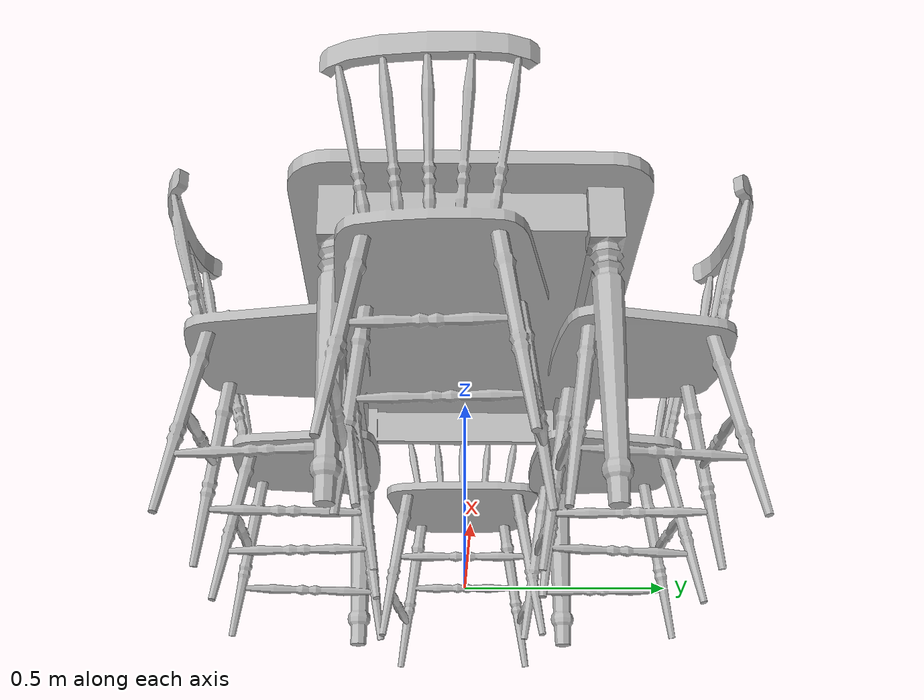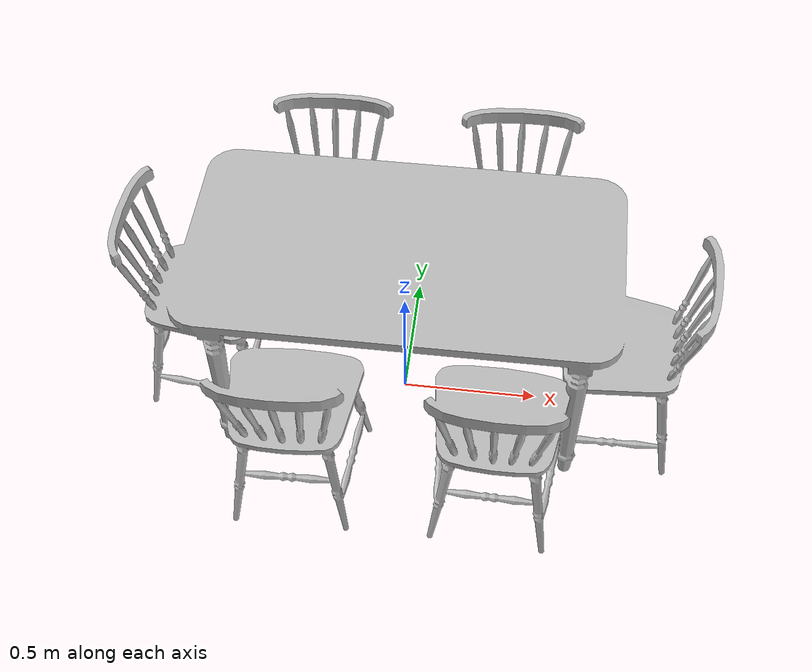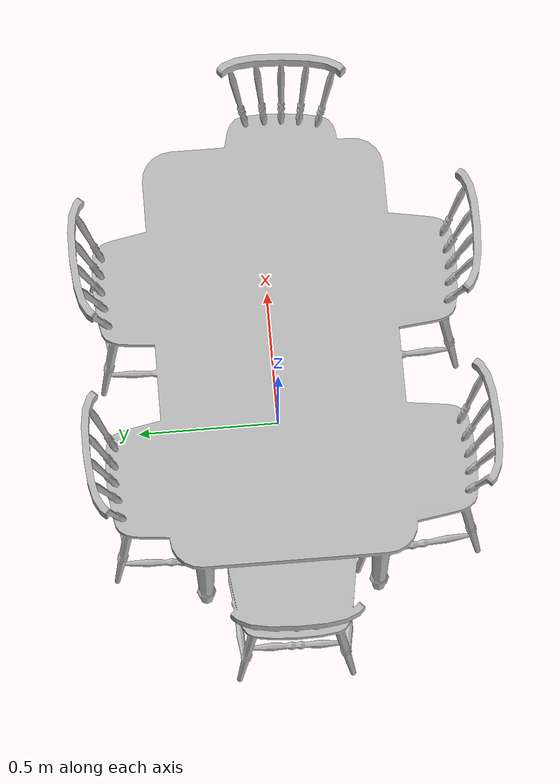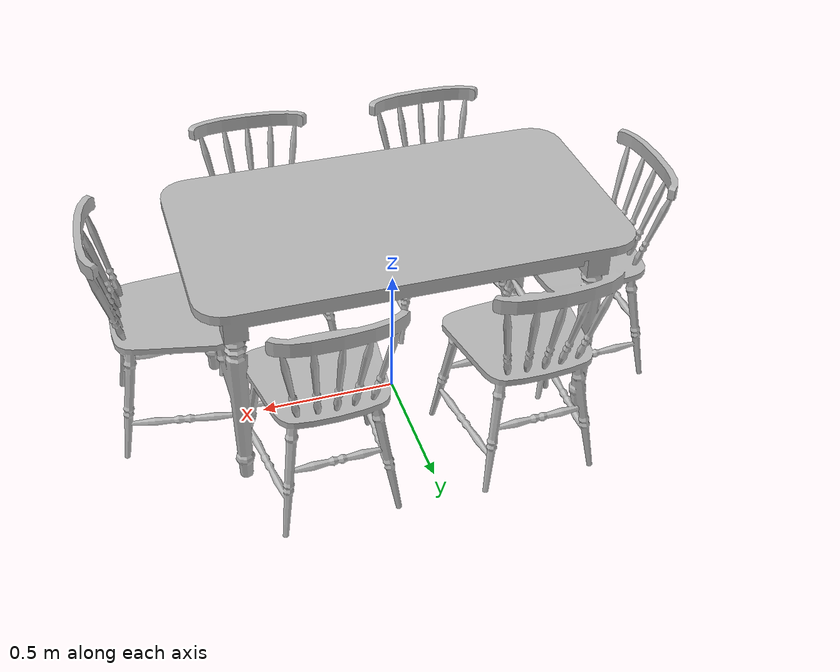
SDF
<?xml version="1.0" ?>
<sdf version="1.7">
  <model name="table_and_chairs">
    <static>true</static>

    <link name="link">
      <visual name="visual">
        <geometry>
          <mesh>
            <uri>model://table_and_chairs/table_and_chairs.dae</uri>

          </mesh>
        </geometry>
      </visual>

      <collision name="collision">
        <geometry>
          <mesh>
            <uri>model://table_and_chairs/table_and_chairs.dae</uri>
          </mesh>
        </geometry>
      </collision>
    </link>
  </model>
</sdf>
